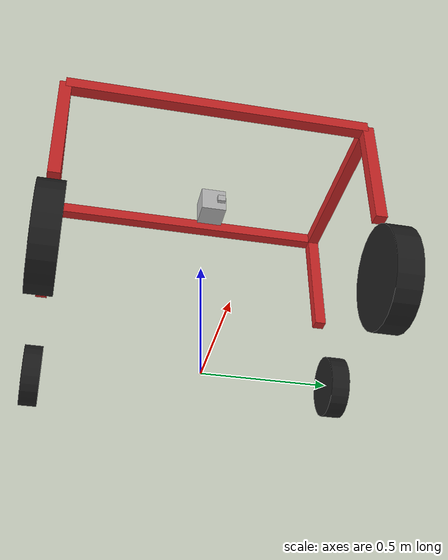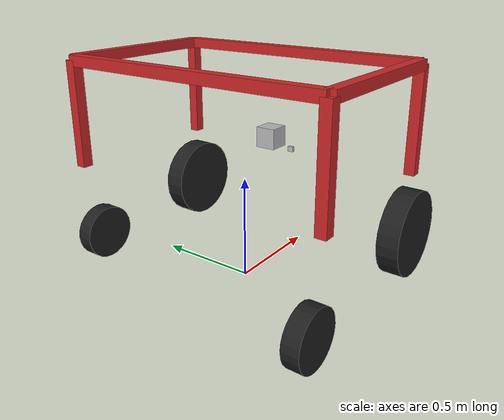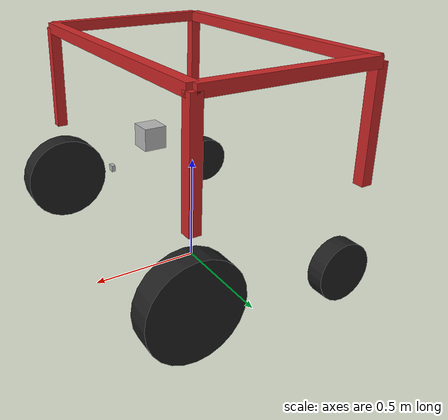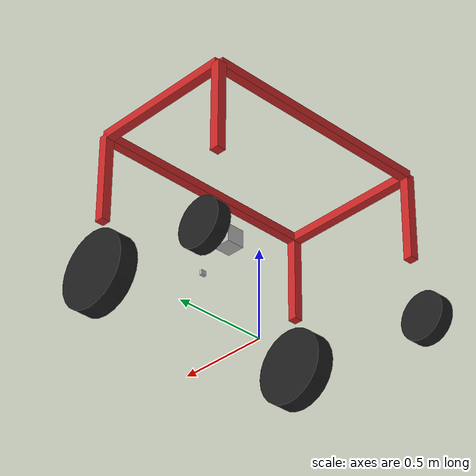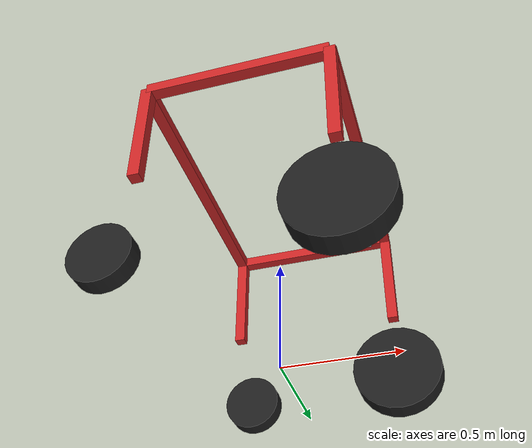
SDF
<sdf version='1.7'>
  <model name='weed'>
    <link name='base_footprint'>
      <inertial>
        <pose>0.002925 0.000256 0.82392 0 -0 0</pose>
        <mass>38.564</mass>
        <inertia>
          <ixx>2.77765</ixx>
          <ixy>-0.00194513</ixy>
          <ixz>0.0182082</ixz>
          <iyy>1.22133</iyy>
          <iyz>0.00159322</iyz>
          <izz>3.52128</izz>
        </inertia>
      </inertial>
      <collision name='base_footprint_fixed_joint_lump__back_left_collision'>
        <pose>-0.4 0.65 0.8 0 -0 0</pose>
        <geometry>
          <box>
            <size>0.05 0.05 0.4</size>
          </box>
        </geometry>
        <surface>
          <contact>
            <ode/>
          </contact>
          <friction>
            <ode/>
          </friction>
        </surface>
      </collision>
      <collision name='base_footprint_fixed_joint_lump__back_right_collision_1'>
        <pose>-0.4 -0.65 0.8 0 -0 0</pose>
        <geometry>
          <box>
            <size>0.05 0.05 0.4</size>
          </box>
        </geometry>
        <surface>
          <contact>
            <ode/>
          </contact>
          <friction>
            <ode/>
          </friction>
        </surface>
      </collision>
      <collision name='base_footprint_fixed_joint_lump__camera_link_collision_2'>
        <pose>0.4 0 0.55 0 -0 0</pose>
        <geometry>
          <box>
            <size>0.015 0.03 0.027</size>
          </box>
        </geometry>
        <surface>
          <contact>
            <ode/>
          </contact>
          <friction>
            <ode/>
          </friction>
        </surface>
      </collision>
      <collision name='base_footprint_fixed_joint_lump__front_left_collision_3'>
        <pose>0.4 0.65 0.8 0 -0 0</pose>
        <geometry>
          <box>
            <size>0.05 0.05 0.5</size>
          </box>
        </geometry>
        <surface>
          <contact>
            <ode/>
          </contact>
          <friction>
            <ode/>
          </friction>
        </surface>
      </collision>
      <collision name='base_footprint_fixed_joint_lump__front_right_collision_4'>
        <pose>0.4 -0.65 0.8 0 -0 0</pose>
        <geometry>
          <box>
            <size>0.05 0.05 0.5</size>
          </box>
        </geometry>
        <surface>
          <contact>
            <ode/>
          </contact>
          <friction>
            <ode/>
          </friction>
        </surface>
      </collision>
      <collision name='base_footprint_fixed_joint_lump__realsense_camera_link_collision_5'>
        <pose>0.2 0 0.6625 0 -0 0</pose>
        <geometry>
          <box>
            <size>0.02505 0.09 0.025</size>
          </box>
        </geometry>
        <surface>
          <contact>
            <ode/>
          </contact>
          <friction>
            <ode/>
          </friction>
        </surface>
      </collision>
      <collision name='base_footprint_fixed_joint_lump__top_back_collision_6'>
        <pose>-0.4 0 1.05 0 -0 0</pose>
        <geometry>
          <box>
            <size>0.05 1.3 0.05</size>
          </box>
        </geometry>
        <surface>
          <contact>
            <ode/>
          </contact>
          <friction>
            <ode/>
          </friction>
        </surface>
      </collision>
      <collision name='base_footprint_fixed_joint_lump__top_front_collision_7'>
        <pose>0.4 0 1.05 0 -0 0</pose>
        <geometry>
          <box>
            <size>0.05 1.3 0.05</size>
          </box>
        </geometry>
        <surface>
          <contact>
            <ode/>
          </contact>
          <friction>
            <ode/>
          </friction>
        </surface>
      </collision>
      <collision name='base_footprint_fixed_joint_lump__top_left_collision_8'>
        <pose>0 0.65 1.05 0 -0 0</pose>
        <geometry>
          <box>
            <size>0.8 0.05 0.05</size>
          </box>
        </geometry>
        <surface>
          <contact>
            <ode/>
          </contact>
          <friction>
            <ode/>
          </friction>
        </surface>
      </collision>
      <collision name='base_footprint_fixed_joint_lump__top_right_collision_9'>
        <pose>0 -0.65 1.05 0 -0 0</pose>
        <geometry>
          <box>
            <size>0.8 0.05 0.05</size>
          </box>
        </geometry>
        <surface>
          <contact>
            <ode/>
          </contact>
          <friction>
            <ode/>
          </friction>
        </surface>
      </collision>
      <visual name='base_footprint_fixed_joint_lump__back_left_visual'>
        <pose>-0.4 0.65 0.8 0 -0 0</pose>
        <geometry>
          <box>
            <size>0.05 0.05 0.5</size>
          </box>
        </geometry>
        <material>
          <script>
            <name>Gazebo/Red</name>
            <uri>file://media/materials/scripts/gazebo.material</uri>
          </script>
        </material>
      </visual>
      <visual name='base_footprint_fixed_joint_lump__back_right_visual_1'>
        <pose>-0.4 -0.65 0.8 0 -0 0</pose>
        <geometry>
          <box>
            <size>0.05 0.05 0.5</size>
          </box>
        </geometry>
        <material>
          <script>
            <name>Gazebo/Red</name>
            <uri>file://media/materials/scripts/gazebo.material</uri>
          </script>
        </material>
      </visual>
      <visual name='base_footprint_fixed_joint_lump__camera_link_visual_2'>
        <pose>0.4 0 0.55 0 -0 0</pose>
        <geometry>
          <box>
            <size>0.015 0.03 0.027</size>
          </box>
        </geometry>
      </visual>
      <visual name='base_footprint_fixed_joint_lump__front_left_visual_3'>
        <pose>0.4 0.65 0.8 0 -0 0</pose>
        <geometry>
          <box>
            <size>0.05 0.05 0.5</size>
          </box>
        </geometry>
        <material>
          <script>
            <name>Gazebo/Red</name>
            <uri>file://media/materials/scripts/gazebo.material</uri>
          </script>
        </material>
      </visual>
      <visual name='base_footprint_fixed_joint_lump__front_right_visual_4'>
        <pose>0.4 -0.65 0.8 0 -0 0</pose>
        <geometry>
          <box>
            <size>0.05 0.05 0.5</size>
          </box>
        </geometry>
        <material>
          <script>
            <name>Gazebo/Red</name>
            <uri>file://media/materials/scripts/gazebo.material</uri>
          </script>
        </material>
      </visual>
      <visual name='base_footprint_fixed_joint_lump__realsense_camera_link_visual_5'>
        <pose>0.2149 0 0.6625 1.5708 -0 1.5708</pose>
        <geometry>
          <box>
            <size>0.1 0.1 0.1</size>
          </box>
        </geometry>
      </visual>
      <visual name='base_footprint_fixed_joint_lump__top_back_visual_6'>
        <pose>-0.4 0 1.05 0 -0 0</pose>
        <geometry>
          <box>
            <size>0.05 1.3 0.05</size>
          </box>
        </geometry>
        <material>
          <script>
            <name>Gazebo/Red</name>
            <uri>file://media/materials/scripts/gazebo.material</uri>
          </script>
        </material>
      </visual>
      <visual name='base_footprint_fixed_joint_lump__top_front_visual_7'>
        <pose>0.4 0 1.05 0 -0 0</pose>
        <geometry>
          <box>
            <size>0.05 1.3 0.05</size>
          </box>
        </geometry>
        <material>
          <script>
            <name>Gazebo/Red</name>
            <uri>file://media/materials/scripts/gazebo.material</uri>
          </script>
        </material>
      </visual>
      <visual name='base_footprint_fixed_joint_lump__top_left_visual_8'>
        <pose>0 0.65 1.05 0 -0 0</pose>
        <geometry>
          <box>
            <size>0.8 0.05 0.05</size>
          </box>
        </geometry>
        <material>
          <script>
            <name>Gazebo/Red</name>
            <uri>file://media/materials/scripts/gazebo.material</uri>
          </script>
        </material>
      </visual>
      <visual name='base_footprint_fixed_joint_lump__top_right_visual_9'>
        <pose>0 -0.65 1.05 0 -0 0</pose>
        <geometry>
          <box>
            <size>0.8 0.05 0.05</size>
          </box>
        </geometry>
        <material>
          <script>
            <name>Gazebo/Red</name>
            <uri>file://media/materials/scripts/gazebo.material</uri>
          </script>
        </material>
      </visual>
      <sensor name='camera' type='camera'>
        <update_rate>30</update_rate>
        <camera name='head'>
          <horizontal_fov>1.39626</horizontal_fov>
          <image>
            <width>800</width>
            <height>600</height>
            <format>R8G8B8</format>
          </image>
          <clip>
            <near>0.02</near>
            <far>300</far>
          </clip>
          <noise>
            <type>gaussian</type>
            <mean>0</mean>
            <stddev>0.007</stddev>
          </noise>
        </camera>
        <plugin name='camera_controller' filename='libgazebo_ros_camera.so'>
          <alwaysOn>1</alwaysOn>
          <updateRate>30.0</updateRate>
          <cameraName>iRobot/camera</cameraName>
          <imageTopicName>image_raw</imageTopicName>
          <cameraInfoTopicName>camera_info</cameraInfoTopicName>
          <frameName>camera_link</frameName>
          <hackBaseline>0.07</hackBaseline>
          <distortionK1>0.0</distortionK1>
          <distortionK2>0.0</distortionK2>
          <distortionK3>0.0</distortionK3>
          <distortionT1>0.0</distortionT1>
          <distortionT2>0.0</distortionT2>
        </plugin>
        <pose>0.4 0 0.55 0 -0 0</pose>
      </sensor>
      <sensor name='realsense_camera' type='camera'>
        <update_rate>30</update_rate>
        <visualize>1</visualize>
        <camera name='head'>
          <horizontal_fov>1.39626</horizontal_fov>
          <image>
            <width>800</width>
            <height>600</height>
            <format>R8G8B8</format>
          </image>
          <clip>
            <near>0.02</near>
            <far>300</far>
          </clip>
          <noise>
            <type>gaussian</type>
            <mean>0</mean>
            <stddev>0.007</stddev>
          </noise>
        </camera>
        <plugin name='realsense_camera_controller' filename='libgazebo_ros_camera.so'>
          <alwaysOn>1</alwaysOn>
          <updateRate>30.0</updateRate>
          <cameraName>realsense/camera</cameraName>
          <imageTopicName>realsense/image_raw</imageTopicName>
          <cameraInfoTopicName>realsense_camera_info</cameraInfoTopicName>
          <frameName>realsense_camera_link</frameName>
          <hackBaseline>0.07</hackBaseline>
          <distortionK1>0.0</distortionK1>
          <distortionK2>0.0</distortionK2>
          <distortionK3>0.0</distortionK3>
          <distortionT1>0.0</distortionT1>
          <distortionT2>0.0</distortionT2>
        </plugin>
        <pose>0.2 0.0175 0.6625 0 -0 0</pose>
      </sensor>
      <sensor name='intel_realsense_r200_depth' type='depth'>
        <always_on>1</always_on>
        <update_rate>30</update_rate>
        <camera name='realsense_depth_camera'>
          <horizontal_fov>1.39626</horizontal_fov>
          <image>
            <width>320</width>
            <height>240</height>
          </image>
          <clip>
            <near>0.1</near>
            <far>100</far>
          </clip>
        </camera>
        <plugin name='intel_realsense_r200_depth_driver' filename='libgazebo_ros_camera.so'>
          <ros/>
          <camera_name>intel_realsense_r200_depth</camera_name>
          <frame_name>realsense_camera_depth_optical_frame</frame_name>
          <hack_baseline>0.07</hack_baseline>
          <min_depth>0.001</min_depth>
        </plugin>
        <pose>0.2 0.0175 0.6625 0 -0 0</pose>
      </sensor>
    </link>
    <joint name='back_cl_j' type='revolute'>
      <pose relative_to='base_footprint'>-0.4 0.65 0.18 0 -0 0</pose>
      <parent>base_footprint</parent>
      <child>back_c_l</child>
      <axis>
        <xyz>0 0 1</xyz>
        <limit>
          <effort>10000</effort>
          <velocity>1000</velocity>
          <lower>-1e+16</lower>
          <upper>1e+16</upper>
        </limit>
        <dynamics>
          <spring_reference>0</spring_reference>
          <spring_stiffness>0</spring_stiffness>
        </dynamics>
      </axis>
    </joint>
    <link name='back_c_l'>
      <pose relative_to='back_cl_j'>0 0 0 0 -0 0</pose>
      <inertial>
        <pose>0.040802 -2e-06 -0.075306 0 -0 0</pose>
        <mass>3</mass>
        <inertia>
          <ixx>0.011943</ixx>
          <ixy>1.51346e-07</ixy>
          <ixz>0.00470867</ixz>
          <iyy>0.0127196</iyy>
          <iyz>-3.20566e-07</iyz>
          <izz>0.00449043</izz>
        </inertia>
      </inertial>
      <collision name='back_c_l_collision'>
        <pose>0 0 0 0 -0 0</pose>
        <geometry>
          <box>
            <size>0.01 0.01 0.01</size>
          </box>
        </geometry>
      </collision>
      <visual name='back_c_l_visual'>
        <pose>0 0 0 0 -0 0</pose>
        <geometry>
          <box>
            <size>0.01 0.01 0.01</size>
          </box>
        </geometry>
      </visual>
    </link>
    <joint name='back_wl_j' type='revolute'>
      <pose relative_to='back_c_l'>0.079407 0 0 1.57 -0 0</pose>
      <parent>back_c_l</parent>
      <child>back_w_l</child>
      <axis>
        <xyz>0 0 1</xyz>
        <limit>
          <lower>-1e+16</lower>
          <upper>1e+16</upper>
        </limit>
        <dynamics>
          <spring_reference>0</spring_reference>
          <spring_stiffness>0</spring_stiffness>
        </dynamics>
      </axis>
    </joint>
    <link name='back_w_l'>
      <pose relative_to='back_wl_j'>0 0 0 0 -0 0</pose>
      <inertial>
        <pose>-0.000406 -6.8e-05 1.5e-05 0 -0 0</pose>
        <mass>0.630033</mass>
        <inertia>
          <ixx>0.00669221</ixx>
          <ixy>1.46876e-06</ixy>
          <ixz>-1.83677e-07</ixz>
          <iyy>0.00381017</iyy>
          <iyz>2.02229e-07</iyz>
          <izz>0.00380711</izz>
        </inertia>
      </inertial>
      <collision name='back_w_l_collision'>
        <pose>0 0 0 0 -0 0</pose>
        <geometry>
          <cylinder>
            <length>0.078</length>
            <radius>0.13</radius>
          </cylinder>
        </geometry>
        <surface>
          <contact>
            <ode/>
          </contact>
          <friction>
            <ode/>
          </friction>
        </surface>
      </collision>
      <visual name='back_w_l_visual'>
        <pose>0 0 0 0 -0 0</pose>
        <geometry>
          <cylinder>
            <length>0.078</length>
            <radius>0.13</radius>
          </cylinder>
        </geometry>
        <material>
          <script>
            <name>Gazebo/Black</name>
            <uri>file://media/materials/scripts/gazebo.material</uri>
          </script>
        </material>
      </visual>
    </link>
    <joint name='back_cr_j' type='revolute'>
      <pose relative_to='base_footprint'>-0.4 -0.65 0.18 0 -0 0</pose>
      <parent>base_footprint</parent>
      <child>back_c_r</child>
      <axis>
        <xyz>0 0 1</xyz>
        <limit>
          <effort>10000</effort>
          <velocity>1000</velocity>
          <lower>-1e+16</lower>
          <upper>1e+16</upper>
        </limit>
        <dynamics>
          <spring_reference>0</spring_reference>
          <spring_stiffness>0</spring_stiffness>
        </dynamics>
      </axis>
    </joint>
    <link name='back_c_r'>
      <pose relative_to='back_cr_j'>0 0 0 0 -0 0</pose>
      <inertial>
        <pose>-0.040802 2e-06 -0.075306 0 -0 0</pose>
        <mass>3</mass>
        <inertia>
          <ixx>0.011943</ixx>
          <ixy>1.51329e-07</ixy>
          <ixz>-0.00470867</ixz>
          <iyy>0.0127196</iyy>
          <iyz>3.20627e-07</iyz>
          <izz>0.00449043</izz>
        </inertia>
      </inertial>
      <collision name='back_c_r_collision'>
        <pose>0 0 0 0 -0 0</pose>
        <geometry>
          <box>
            <size>0.01 0.01 0.01</size>
          </box>
        </geometry>
      </collision>
      <visual name='back_c_r_visual'>
        <pose>0 0 0 0 -0 0</pose>
        <geometry>
          <box>
            <size>0.01 0.01 0.01</size>
          </box>
        </geometry>
      </visual>
    </link>
    <joint name='back_wr_j' type='revolute'>
      <pose relative_to='back_c_r'>-0.079407 0 0 1.57 -0 0</pose>
      <parent>back_c_r</parent>
      <child>back_w_r</child>
      <axis>
        <xyz>0 0 1</xyz>
        <limit>
          <lower>-1e+16</lower>
          <upper>1e+16</upper>
        </limit>
        <dynamics>
          <spring_reference>0</spring_reference>
          <spring_stiffness>0</spring_stiffness>
        </dynamics>
      </axis>
    </joint>
    <link name='back_w_r'>
      <pose relative_to='back_wr_j'>0 0 0 0 -0 0</pose>
      <inertial>
        <pose>-0.000406 -6.8e-05 1.5e-05 0 -0 0</pose>
        <mass>0.630033</mass>
        <inertia>
          <ixx>0.00669221</ixx>
          <ixy>1.46876e-06</ixy>
          <ixz>-1.83677e-07</ixz>
          <iyy>0.00381017</iyy>
          <iyz>2.02229e-07</iyz>
          <izz>0.00380711</izz>
        </inertia>
      </inertial>
      <collision name='back_w_r_collision'>
        <pose>0 0 0 0 -0 0</pose>
        <geometry>
          <cylinder>
            <length>0.078</length>
            <radius>0.13</radius>
          </cylinder>
        </geometry>
        <surface>
          <contact>
            <ode/>
          </contact>
          <friction>
            <ode/>
          </friction>
        </surface>
      </collision>
      <visual name='back_w_r_visual'>
        <pose>0 0 0 0 -0 0</pose>
        <geometry>
          <cylinder>
            <length>0.078</length>
            <radius>0.13</radius>
          </cylinder>
        </geometry>
        <material>
          <script>
            <name>Gazebo/Black</name>
            <uri>file://media/materials/scripts/gazebo.material</uri>
          </script>
        </material>
      </visual>
    </link>
    <joint name='front_wl_j' type='revolute'>
      <pose relative_to='base_footprint'>0.4 0.65 0.26 1.57 -0 0</pose>
      <parent>base_footprint</parent>
      <child>front_w_l</child>
      <axis>
        <xyz>0 0 1</xyz>
        <limit>
          <lower>-1e+16</lower>
          <upper>1e+16</upper>
        </limit>
        <dynamics>
          <spring_reference>0</spring_reference>
          <spring_stiffness>0</spring_stiffness>
        </dynamics>
      </axis>
    </joint>
    <link name='front_w_l'>
      <pose relative_to='front_wl_j'>0 0 0 0 -0 0</pose>
      <inertial>
        <pose>0 0 0 0 -0 0</pose>
        <mass>3.63003</mass>
        <inertia>
          <ixx>0.00669221</ixx>
          <ixy>1.46876e-06</ixy>
          <ixz>-1.83677e-07</ixz>
          <iyy>0.00381017</iyy>
          <iyz>2.02229e-07</iyz>
          <izz>0.00380711</izz>
        </inertia>
      </inertial>
      <collision name='front_w_l_collision'>
        <pose>0 0 0 0 -0 0</pose>
        <geometry>
          <cylinder>
            <length>0.105</length>
            <radius>0.21</radius>
          </cylinder>
        </geometry>
        <surface>
          <contact>
            <ode/>
          </contact>
          <friction>
            <ode/>
          </friction>
        </surface>
      </collision>
      <visual name='front_w_l_visual'>
        <pose>0 0 0 0 -0 0</pose>
        <geometry>
          <cylinder>
            <length>0.105</length>
            <radius>0.21</radius>
          </cylinder>
        </geometry>
        <material>
          <script>
            <name>Gazebo/Black</name>
            <uri>file://media/materials/scripts/gazebo.material</uri>
          </script>
        </material>
      </visual>
    </link>
    <joint name='front_wr_j' type='revolute'>
      <pose relative_to='base_footprint'>0.4 -0.65 0.26 1.57 -0 0</pose>
      <parent>base_footprint</parent>
      <child>front_w_r</child>
      <axis>
        <xyz>0 0 1</xyz>
        <limit>
          <lower>-1e+16</lower>
          <upper>1e+16</upper>
        </limit>
        <dynamics>
          <spring_reference>0</spring_reference>
          <spring_stiffness>0</spring_stiffness>
        </dynamics>
      </axis>
    </joint>
    <link name='front_w_r'>
      <pose relative_to='front_wr_j'>0 0 0 0 -0 0</pose>
      <inertial>
        <pose>0 0 0 0 -0 0</pose>
        <mass>3.63003</mass>
        <inertia>
          <ixx>0.00669221</ixx>
          <ixy>1.46876e-06</ixy>
          <ixz>-1.83677e-07</ixz>
          <iyy>0.00381017</iyy>
          <iyz>2.02229e-07</iyz>
          <izz>0.00380711</izz>
        </inertia>
      </inertial>
      <collision name='front_w_r_collision'>
        <pose>0 0 0 0 -0 0</pose>
        <geometry>
          <cylinder>
            <length>0.105</length>
            <radius>0.21</radius>
          </cylinder>
        </geometry>
        <surface>
          <contact>
            <ode/>
          </contact>
          <friction>
            <ode/>
          </friction>
        </surface>
      </collision>
      <visual name='front_w_r_visual'>
        <pose>0 0 0 0 -0 0</pose>
        <geometry>
          <cylinder>
            <length>0.105</length>
            <radius>0.21</radius>
          </cylinder>
        </geometry>
        <material>
          <script>
            <name>Gazebo/Black</name>
            <uri>file://media/materials/scripts/gazebo.material</uri>
          </script>
        </material>
      </visual>
    </link>
    <plugin name='diff_drive' filename='libgazebo_ros_diff_drive.so'>
      <update_rate>30</update_rate>
      <left_joint>front_wl_j</left_joint>
      <right_joint>front_wr_j</right_joint>
      <wheel_separation>1.4</wheel_separation>
      <wheel_diameter>0.42</wheel_diameter>
      <max_wheel_torque>20</max_wheel_torque>
      <max_wheel_acceleration>1.0</max_wheel_acceleration>
      <command_topic>cmd_vel</command_topic>
      <publish_odom>1</publish_odom>
      <publish_odom_tf>1</publish_odom_tf>
      <publish_wheel_tf>0</publish_wheel_tf>
      <odometry_topic>odom</odometry_topic>
      <odometry_frame>odom</odometry_frame>
      <robot_base_frame>base_footprint</robot_base_frame>
    </plugin>
    <plugin name='turtlebot3_joint_state' filename='libgazebo_ros_joint_state_publisher.so'>
      <ros>
        <remapping>~/out:=joint_states</remapping>
      </ros>
      <update_rate>30</update_rate>
      <joint_name>front_wl_j</joint_name>
      <joint_name>front_wr_j</joint_name>
      <joint_name>back_wl_j</joint_name>
      <joint_name>back_wr_j</joint_name>
      <joint_name>back_cl_j</joint_name>
      <joint_name>back_cr_j</joint_name>
    </plugin>
    <frame name='back_left_joint' attached_to='base_link'>
      <pose>-0.4 0.65 0 0 -0 0</pose>
    </frame>
    <frame name='back_left' attached_to='back_left_joint'/>
    <frame name='back_right_joint' attached_to='base_link'>
      <pose>-0.4 -0.65 0 0 -0 0</pose>
    </frame>
    <frame name='back_right' attached_to='back_right_joint'/>
    <frame name='camera_rgb_optical_joint' attached_to='camera_rgb_frame'>
      <pose>0 0 0 -1.57 -0 -1.57</pose>
    </frame>
    <frame name='camera_rgb_optical_frame' attached_to='camera_rgb_optical_joint'/>
    <frame name='camera_rgb_joint' attached_to='camera_link'>
      <pose>0.003 0.011 0.009 0 -0 0</pose>
    </frame>
    <frame name='camera_rgb_frame' attached_to='camera_rgb_joint'/>
    <frame name='camera_joint' attached_to='base_link'>
      <pose>0.4 0 -0.25 0 -0 0</pose>
    </frame>
    <frame name='camera_link' attached_to='camera_joint'/>
    <frame name='front_left_joint' attached_to='base_link'>
      <pose>0.4 0.65 0 0 -0 0</pose>
    </frame>
    <frame name='front_left' attached_to='front_left_joint'/>
    <frame name='front_right_joint' attached_to='base_link'>
      <pose>0.4 -0.65 0 0 -0 0</pose>
    </frame>
    <frame name='front_right' attached_to='front_right_joint'/>
    <frame name='realsense_camera_color_optical_joint' attached_to='realsense_camera_color_frame'>
      <pose>0 0 0 -1.5708 -0 -1.5708</pose>
    </frame>
    <frame name='realsense_camera_color_optical_frame' attached_to='realsense_camera_color_optical_joint'/>
    <frame name='realsense_camera_color_joint' attached_to='realsense_camera_depth_frame'>
      <pose>0 0.015 0 0 -0 0</pose>
    </frame>
    <frame name='realsense_camera_color_frame' attached_to='realsense_camera_color_joint'/>
    <frame name='realsense_camera_depth_optical_joint' attached_to='realsense_camera_depth_frame'>
      <pose>0 0 0 -1.5708 -0 -1.5708</pose>
    </frame>
    <frame name='realsense_camera_depth_optical_frame' attached_to='realsense_camera_depth_optical_joint'/>
    <frame name='realsense_camera_left_ir_optical_joint' attached_to='realsense_camera_left_ir_frame'>
      <pose>0 0 0 -1.5708 -0 -1.5708</pose>
    </frame>
    <frame name='realsense_camera_left_ir_optical_frame' attached_to='realsense_camera_left_ir_optical_joint'/>
    <frame name='realsense_camera_left_ir_joint' attached_to='realsense_camera_depth_frame'>
      <pose>0 0 0 0 -0 0</pose>
    </frame>
    <frame name='realsense_camera_left_ir_frame' attached_to='realsense_camera_left_ir_joint'/>
    <frame name='realsense_camera_right_ir_optical_joint' attached_to='realsense_camera_right_ir_frame'>
      <pose>0 0 0 -1.5708 -0 -1.5708</pose>
    </frame>
    <frame name='realsense_camera_right_ir_optical_frame' attached_to='realsense_camera_right_ir_optical_joint'/>
    <frame name='realsense_camera_right_ir_joint' attached_to='realsense_camera_depth_frame'>
      <pose>0 -0.05 0 0 -0 0</pose>
    </frame>
    <frame name='realsense_camera_right_ir_frame' attached_to='realsense_camera_right_ir_joint'/>
    <frame name='realsense_camera_depth_joint' attached_to='realsense_camera_link'>
      <pose>0 0 0 0 -0 0</pose>
    </frame>
    <frame name='realsense_camera_depth_frame' attached_to='realsense_camera_depth_joint'/>
    <frame name='realsense_camera_link_joint' attached_to='realsense_camera_bottom_screw_frame'>
      <pose>0 0.0175 0.0125 0 -0 0</pose>
    </frame>
    <frame name='realsense_camera_link' attached_to='realsense_camera_link_joint'/>
    <frame name='realsense_camera_joint' attached_to='base_link'>
      <pose>0.2 0 -0.15 0 -0 0</pose>
    </frame>
    <frame name='realsense_camera_bottom_screw_frame' attached_to='realsense_camera_joint'/>
    <frame name='top_back_joint' attached_to='base_link'>
      <pose>-0.4 0 0.25 0 -0 0</pose>
    </frame>
    <frame name='top_back' attached_to='top_back_joint'/>
    <frame name='top_front_joint' attached_to='base_link'>
      <pose>0.4 0 0.25 0 -0 0</pose>
    </frame>
    <frame name='top_front' attached_to='top_front_joint'/>
    <frame name='top_left_joint' attached_to='base_link'>
      <pose>0 0.65 0.25 0 -0 0</pose>
    </frame>
    <frame name='top_left' attached_to='top_left_joint'/>
    <frame name='top_right_joint' attached_to='base_link'>
      <pose>0 -0.65 0.25 0 -0 0</pose>
    </frame>
    <frame name='top_right' attached_to='top_right_joint'/>
    <static>0</static>
    <frame name='base_joint' attached_to='base_footprint'>
      <pose>0 0 0.8 0 -0 0</pose>
    </frame>
    <frame name='base_link' attached_to='base_joint'/>
  </model>
</sdf>
